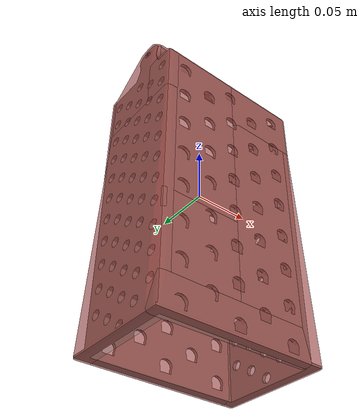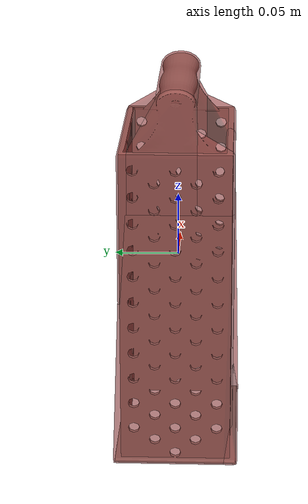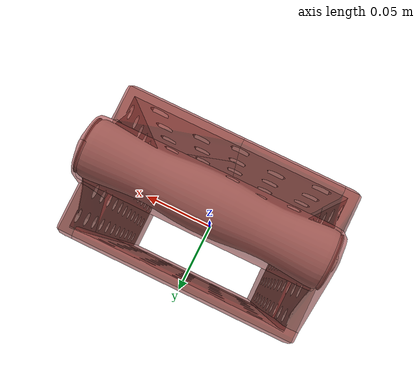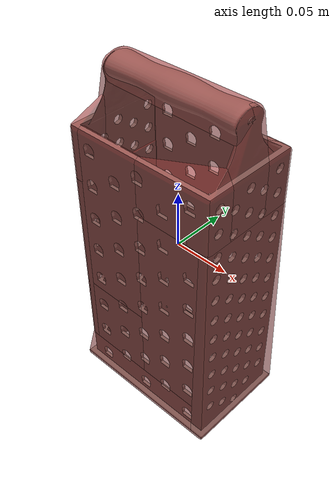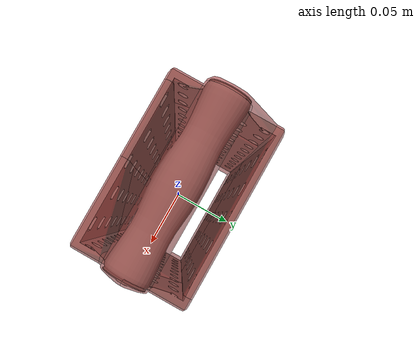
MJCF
<mujoco model="model">
  <option timestep="0.002" gravity="0.0 0.0 -9.81"/>
  <compiler angle="radian"/>
  <asset>
    <mesh file="visual/CheeseGrater004.obj" name="CheeseGrater004_vis"/>
    <texture file="visual/T_BC001.png" name="CheeseGrater004_material" type="2d"/>
    <material name="CheeseGrater004_material" rgba="1 1 1 1.0" texture="CheeseGrater004_material" shininess="0.5" specular="1"/>
    <mesh file="collision/collision_mesh_collision_0.obj" name="CheeseGrater004_collision_mesh_0"/>
    <mesh file="collision/collision_mesh_collision_1.obj" name="CheeseGrater004_collision_mesh_1"/>
    <mesh file="collision/collision_mesh_collision_2.obj" name="CheeseGrater004_collision_mesh_2"/>
    <mesh file="collision/collision_mesh_collision_3.obj" name="CheeseGrater004_collision_mesh_3"/>
    <mesh file="collision/collision_mesh_collision_4.obj" name="CheeseGrater004_collision_mesh_4"/>
    <mesh file="collision/collision_mesh_collision_5.obj" name="CheeseGrater004_collision_mesh_5"/>
    <mesh file="collision/collision_mesh_collision_6.obj" name="CheeseGrater004_collision_mesh_6"/>
    <mesh file="collision/collision_mesh_collision_7.obj" name="CheeseGrater004_collision_mesh_7"/>
    <mesh file="collision/collision_mesh_collision_8.obj" name="CheeseGrater004_collision_mesh_8"/>
    <mesh file="collision/collision_mesh_collision_9.obj" name="CheeseGrater004_collision_mesh_9"/>
    <mesh file="collision/collision_mesh_collision_10.obj" name="CheeseGrater004_collision_mesh_10"/>
    <mesh file="collision/collision_mesh_collision_11.obj" name="CheeseGrater004_collision_mesh_11"/>
    <mesh file="collision/collision_mesh_collision_12.obj" name="CheeseGrater004_collision_mesh_12"/>
    <mesh file="collision/collision_mesh_collision_13.obj" name="CheeseGrater004_collision_mesh_13"/>
  </asset>
  <default>
    <default class="visual">
      <geom conaffinity="0" contype="0" group="1" type="mesh"/>
    </default>
    <default class="collision">
      <geom group="0" rgba="0.5 0 0 0.5" density="1.0" solref="0.004 1" solimp="0.998 0.998 0.001"/>
    </default>
    <default class="spawn">
      <geom group="0" rgba="1 1 1 0.5" contype="0" conaffinity="0"/>
      <site group="0" rgba="1 1 1 0.5"/>
    </default>
    <default class="region">
      <geom group="1" conaffinity="0" contype="0" rgba="0 1 0 0" mass="0"/>
    </default>
  </default>
  <worldbody>
    <body>
      <body name="object">
        <geom mesh="CheeseGrater004_vis" type="mesh" solimp="0.998 0.998 0.001" solref="0.001 1" friction="0.95 0.3 0.1" class="visual" material="CheeseGrater004_material"/>
        <geom class="region" name="reg_bbox" type="box" pos="5.4999999998806004e-08 1.9999999999881224e-08 -5.26949999999915e-05" size="0.073506285 0.04893396 0.150901745"/>
        <geom mesh="CheeseGrater004_collision_mesh_0" type="mesh" class="collision"/>
        <geom mesh="CheeseGrater004_collision_mesh_1" type="mesh" class="collision"/>
        <geom mesh="CheeseGrater004_collision_mesh_2" type="mesh" class="collision"/>
        <geom mesh="CheeseGrater004_collision_mesh_3" type="mesh" class="collision"/>
        <geom mesh="CheeseGrater004_collision_mesh_4" type="mesh" class="collision"/>
        <geom mesh="CheeseGrater004_collision_mesh_5" type="mesh" class="collision"/>
        <geom mesh="CheeseGrater004_collision_mesh_6" type="mesh" class="collision"/>
        <geom mesh="CheeseGrater004_collision_mesh_7" type="mesh" class="collision"/>
        <geom mesh="CheeseGrater004_collision_mesh_8" type="mesh" class="collision"/>
        <geom mesh="CheeseGrater004_collision_mesh_9" type="mesh" class="collision"/>
        <geom mesh="CheeseGrater004_collision_mesh_10" type="mesh" class="collision"/>
        <geom mesh="CheeseGrater004_collision_mesh_11" type="mesh" class="collision"/>
        <geom mesh="CheeseGrater004_collision_mesh_12" type="mesh" class="collision"/>
        <geom mesh="CheeseGrater004_collision_mesh_13" type="mesh" class="collision"/>
      </body>
    </body>
  </worldbody>
  <actuator/>
</mujoco>
